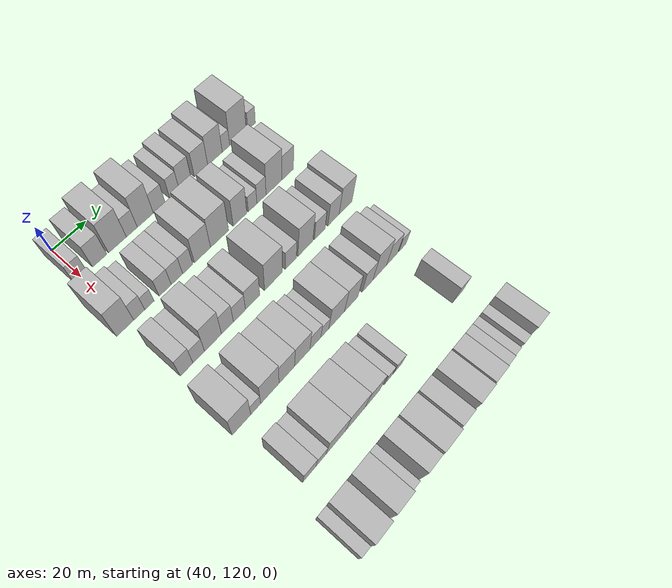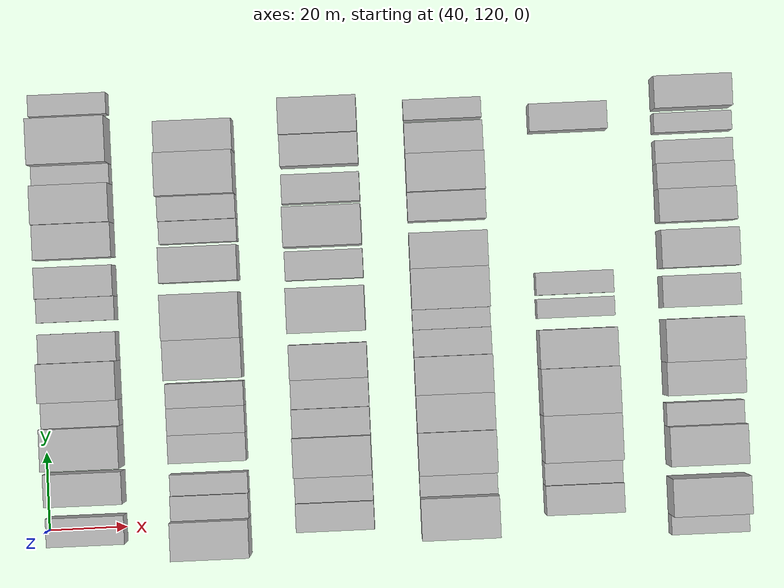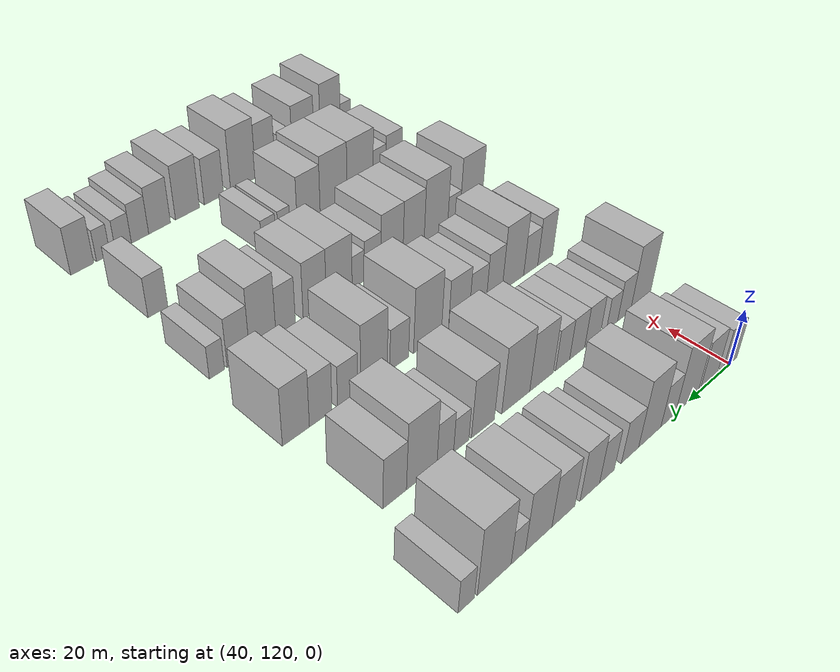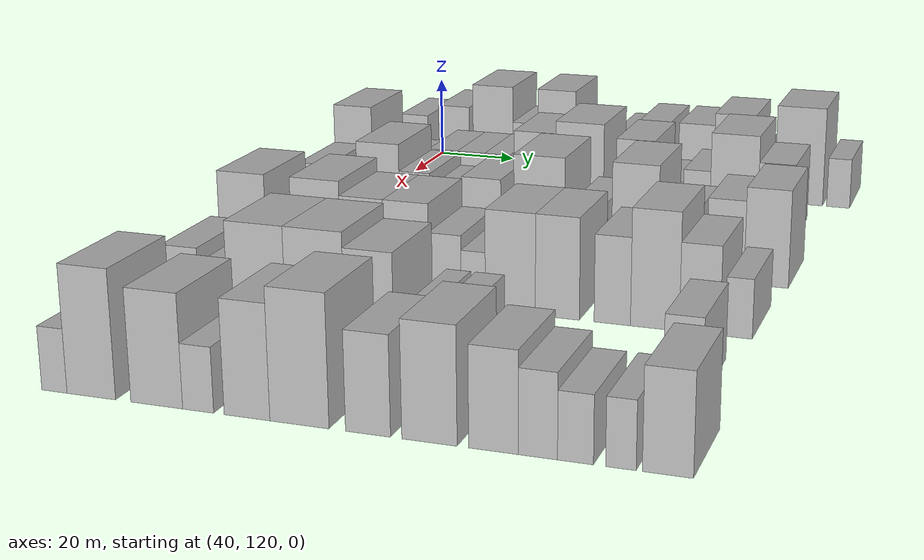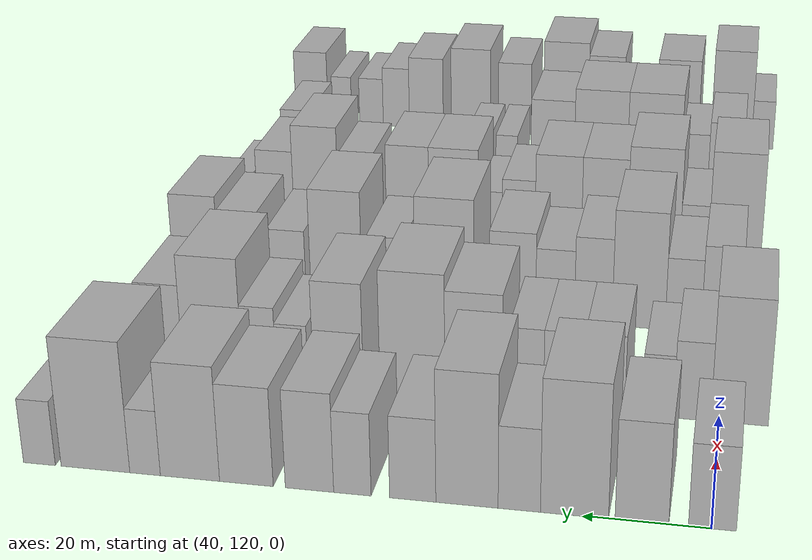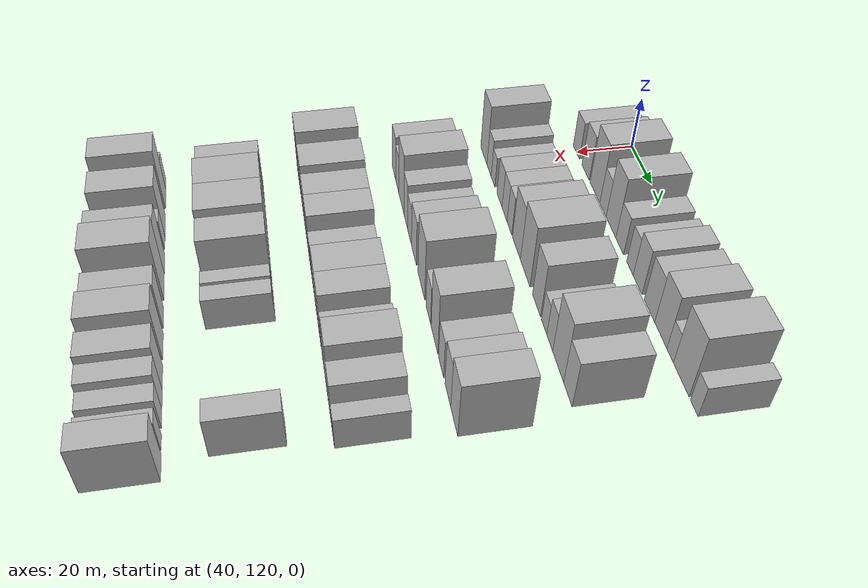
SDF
<sdf version="1.6">
 <world name="default">
  <model name="building_68">
   <static>1</static>
   <pose>50.0000 119.9070 0 0.000000 0.000000 0.000000</pose>
   <link name="link">
    <pose>0 0 7.50 0 0 0</pose>
    <collision name="collision"><geometry><box><size>20.0000 7.3428 15.0000</size></box></geometry></collision>
    <visual name="visual">
     <cast_shadows>0</cast_shadows>
     <geometry><box><size>20.0000 7.3428 15.0000</size></box></geometry>
     <material>
      <script>
       <uri>model://HANNAS_wall/materials/scripts</uri>
       <uri>model://HANNAS_wall/materials/textures</uri>
       <name>vrc/HANNAS_wall</name>
      </script>
     </material>
    </visual>
   </link>
  </model>
  <model name="building_69">
   <static>1</static>
   <pose>50.0000 130.7418 0 0.000000 0.000000 0.000000</pose>
   <link name="link">
    <pose>0 0 9.00 0 0 0</pose>
    <collision name="collision"><geometry><box><size>20.0000 8.3268 18.0000</size></box></geometry></collision>
    <visual name="visual">
     <cast_shadows>0</cast_shadows>
     <geometry><box><size>20.0000 8.3268 18.0000</size></box></geometry>
     <material>
      <script>
       <uri>model://HANNAS_wall/materials/scripts</uri>
       <uri>model://HANNAS_wall/materials/textures</uri>
       <name>vrc/HANNAS_wall</name>
      </script>
     </material>
    </visual>
   </link>
  </model>
  <model name="building_70">
   <static>1</static>
   <pose>50.0000 141.2380 0 0.000000 0.000000 0.000000</pose>
   <link name="link">
    <pose>0 0 12.00 0 0 0</pose>
    <collision name="collision"><geometry><box><size>20.0000 10.6655 24.0000</size></box></geometry></collision>
    <visual name="visual">
     <cast_shadows>0</cast_shadows>
     <geometry><box><size>20.0000 10.6655 24.0000</size></box></geometry>
     <material>
      <script>
       <uri>model://HANNAS_wall/materials/scripts</uri>
       <uri>model://HANNAS_wall/materials/textures</uri>
       <name>vrc/HANNAS_wall</name>
      </script>
     </material>
    </visual>
   </link>
  </model>
  <model name="building_71">
   <static>1</static>
   <pose>50.0000 149.9145 0 0.000000 0.000000 0.000000</pose>
   <link name="link">
    <pose>0 0 7.50 0 0 0</pose>
    <collision name="collision"><geometry><box><size>20.0000 6.6874 15.0000</size></box></geometry></collision>
    <visual name="visual">
     <cast_shadows>0</cast_shadows>
     <geometry><box><size>20.0000 6.6874 15.0000</size></box></geometry>
     <material>
      <script>
       <uri>model://HANNAS_wall/materials/scripts</uri>
       <uri>model://HANNAS_wall/materials/textures</uri>
       <name>vrc/HANNAS_wall</name>
      </script>
     </material>
    </visual>
   </link>
  </model>
  <model name="building_72">
   <static>1</static>
   <pose>50.0000 158.2253 0 0.000000 0.000000 0.000000</pose>
   <link name="link">
    <pose>0 0 12.00 0 0 0</pose>
    <collision name="collision"><geometry><box><size>20.0000 9.9344 24.0000</size></box></geometry></collision>
    <visual name="visual">
     <cast_shadows>0</cast_shadows>
     <geometry><box><size>20.0000 9.9344 24.0000</size></box></geometry>
     <material>
      <script>
       <uri>model://HANNAS_wall/materials/scripts</uri>
       <uri>model://HANNAS_wall/materials/textures</uri>
       <name>vrc/HANNAS_wall</name>
      </script>
     </material>
    </visual>
   </link>
  </model>
  <model name="building_73">
   <static>1</static>
   <pose>50.0000 166.9220 0 0.000000 0.000000 0.000000</pose>
   <link name="link">
    <pose>0 0 7.50 0 0 0</pose>
    <collision name="collision"><geometry><box><size>20.0000 7.4589 15.0000</size></box></geometry></collision>
    <visual name="visual">
     <cast_shadows>0</cast_shadows>
     <geometry><box><size>20.0000 7.4589 15.0000</size></box></geometry>
     <material>
      <script>
       <uri>model://HANNAS_wall/materials/scripts</uri>
       <uri>model://HANNAS_wall/materials/textures</uri>
       <name>vrc/HANNAS_wall</name>
      </script>
     </material>
    </visual>
   </link>
  </model>
  <model name="building_74">
   <static>1</static>
   <pose>50.0000 176.7063 0 0.000000 0.000000 0.000000</pose>
   <link name="link">
    <pose>0 0 7.50 0 0 0</pose>
    <collision name="collision"><geometry><box><size>20.0000 6.1096 15.0000</size></box></geometry></collision>
    <visual name="visual">
     <cast_shadows>0</cast_shadows>
     <geometry><box><size>20.0000 6.1096 15.0000</size></box></geometry>
     <material>
      <script>
       <uri>model://HANNAS_wall/materials/scripts</uri>
       <uri>model://HANNAS_wall/materials/textures</uri>
       <name>vrc/HANNAS_wall</name>
      </script>
     </material>
    </visual>
   </link>
  </model>
  <model name="building_75">
   <static>1</static>
   <pose>50.0000 183.7355 0 0.000000 0.000000 0.000000</pose>
   <link name="link">
    <pose>0 0 9.00 0 0 0</pose>
    <collision name="collision"><geometry><box><size>20.0000 7.9489 18.0000</size></box></geometry></collision>
    <visual name="visual">
     <cast_shadows>0</cast_shadows>
     <geometry><box><size>20.0000 7.9489 18.0000</size></box></geometry>
     <material>
      <script>
       <uri>model://HANNAS_wall/materials/scripts</uri>
       <uri>model://HANNAS_wall/materials/textures</uri>
       <name>vrc/HANNAS_wall</name>
      </script>
     </material>
    </visual>
   </link>
  </model>
  <model name="building_76">
   <static>1</static>
   <pose>50.0000 194.1709 0 0.000000 0.000000 0.000000</pose>
   <link name="link">
    <pose>0 0 9.00 0 0 0</pose>
    <collision name="collision"><geometry><box><size>20.0000 8.9219 18.0000</size></box></geometry></collision>
    <visual name="visual">
     <cast_shadows>0</cast_shadows>
     <geometry><box><size>20.0000 8.9219 18.0000</size></box></geometry>
     <material>
      <script>
       <uri>model://HANNAS_wall/materials/scripts</uri>
       <uri>model://HANNAS_wall/materials/textures</uri>
       <name>vrc/HANNAS_wall</name>
      </script>
     </material>
    </visual>
   </link>
  </model>
  <model name="building_77">
   <static>1</static>
   <pose>50.0000 203.6097 0 0.000000 0.000000 0.000000</pose>
   <link name="link">
    <pose>0 0 10.50 0 0 0</pose>
    <collision name="collision"><geometry><box><size>20.0000 9.9557 21.0000</size></box></geometry></collision>
    <visual name="visual">
     <cast_shadows>0</cast_shadows>
     <geometry><box><size>20.0000 9.9557 21.0000</size></box></geometry>
     <material>
      <script>
       <uri>model://HANNAS_wall/materials/scripts</uri>
       <uri>model://HANNAS_wall/materials/textures</uri>
       <name>vrc/HANNAS_wall</name>
      </script>
     </material>
    </visual>
   </link>
  </model>
  <model name="building_78">
   <static>1</static>
   <pose>50.0000 211.1815 0 0.000000 0.000000 0.000000</pose>
   <link name="link">
    <pose>0 0 6.00 0 0 0</pose>
    <collision name="collision"><geometry><box><size>20.0000 5.1879 12.0000</size></box></geometry></collision>
    <visual name="visual">
     <cast_shadows>0</cast_shadows>
     <geometry><box><size>20.0000 5.1879 12.0000</size></box></geometry>
     <material>
      <script>
       <uri>model://HANNAS_wall/materials/scripts</uri>
       <uri>model://HANNAS_wall/materials/textures</uri>
       <name>vrc/HANNAS_wall</name>
      </script>
     </material>
    </visual>
   </link>
  </model>
  <model name="building_79">
   <static>1</static>
   <pose>50.0000 219.6512 0 0.000000 0.000000 0.000000</pose>
   <link name="link">
    <pose>0 0 12.00 0 0 0</pose>
    <collision name="collision"><geometry><box><size>20.0000 11.7516 24.0000</size></box></geometry></collision>
    <visual name="visual">
     <cast_shadows>0</cast_shadows>
     <geometry><box><size>20.0000 11.7516 24.0000</size></box></geometry>
     <material>
      <script>
       <uri>model://HANNAS_wall/materials/scripts</uri>
       <uri>model://HANNAS_wall/materials/textures</uri>
       <name>vrc/HANNAS_wall</name>
      </script>
     </material>
    </visual>
   </link>
  </model>
  <model name="building_80">
   <static>1</static>
   <pose>50.0000 229.2806 0 0.000000 0.000000 0.000000</pose>
   <link name="link">
    <pose>0 0 6.00 0 0 0</pose>
    <collision name="collision"><geometry><box><size>20.0000 5.5071 12.0000</size></box></geometry></collision>
    <visual name="visual">
     <cast_shadows>0</cast_shadows>
     <geometry><box><size>20.0000 5.5071 12.0000</size></box></geometry>
     <material>
      <script>
       <uri>model://HANNAS_wall/materials/scripts</uri>
       <uri>model://HANNAS_wall/materials/textures</uri>
       <name>vrc/HANNAS_wall</name>
      </script>
     </material>
    </visual>
   </link>
  </model>
  <model name="building_191">
   <static>1</static>
   <pose>82.0000 116.6392 0 0.000000 0.000000 0.000000</pose>
   <link name="link">
    <pose>0 0 12.00 0 0 0</pose>
    <collision name="collision"><geometry><box><size>20.0000 9.7276 24.0000</size></box></geometry></collision>
    <visual name="visual">
     <cast_shadows>0</cast_shadows>
     <geometry><box><size>20.0000 9.7276 24.0000</size></box></geometry>
     <material>
      <script>
       <uri>model://HANNAS_wall/materials/scripts</uri>
       <uri>model://HANNAS_wall/materials/textures</uri>
       <name>vrc/HANNAS_wall</name>
      </script>
     </material>
    </visual>
   </link>
  </model>
  <model name="building_192">
   <static>1</static>
   <pose>82.0000 124.6727 0 0.000000 0.000000 0.000000</pose>
   <link name="link">
    <pose>0 0 7.50 0 0 0</pose>
    <collision name="collision"><geometry><box><size>20.0000 6.3396 15.0000</size></box></geometry></collision>
    <visual name="visual">
     <cast_shadows>0</cast_shadows>
     <geometry><box><size>20.0000 6.3396 15.0000</size></box></geometry>
     <material>
      <script>
       <uri>model://HANNAS_wall/materials/scripts</uri>
       <uri>model://HANNAS_wall/materials/textures</uri>
       <name>vrc/HANNAS_wall</name>
      </script>
     </material>
    </visual>
   </link>
  </model>
  <model name="building_193">
   <static>1</static>
   <pose>82.0000 130.5390 0 0.000000 0.000000 0.000000</pose>
   <link name="link">
    <pose>0 0 6.00 0 0 0</pose>
    <collision name="collision"><geometry><box><size>20.0000 5.3929 12.0000</size></box></geometry></collision>
    <visual name="visual">
     <cast_shadows>0</cast_shadows>
     <geometry><box><size>20.0000 5.3929 12.0000</size></box></geometry>
     <material>
      <script>
       <uri>model://HANNAS_wall/materials/scripts</uri>
       <uri>model://HANNAS_wall/materials/textures</uri>
       <name>vrc/HANNAS_wall</name>
      </script>
     </material>
    </visual>
   </link>
  </model>
  <model name="building_194">
   <static>1</static>
   <pose>82.0000 139.8363 0 0.000000 0.000000 0.000000</pose>
   <link name="link">
    <pose>0 0 7.50 0 0 0</pose>
    <collision name="collision"><geometry><box><size>20.0000 7.2018 15.0000</size></box></geometry></collision>
    <visual name="visual">
     <cast_shadows>0</cast_shadows>
     <geometry><box><size>20.0000 7.2018 15.0000</size></box></geometry>
     <material>
      <script>
       <uri>model://HANNAS_wall/materials/scripts</uri>
       <uri>model://HANNAS_wall/materials/textures</uri>
       <name>vrc/HANNAS_wall</name>
      </script>
     </material>
    </visual>
   </link>
  </model>
  <model name="building_195">
   <static>1</static>
   <pose>82.0000 146.8855 0 0.000000 0.000000 0.000000</pose>
   <link name="link">
    <pose>0 0 7.50 0 0 0</pose>
    <collision name="collision"><geometry><box><size>20.0000 6.8965 15.0000</size></box></geometry></collision>
    <visual name="visual">
     <cast_shadows>0</cast_shadows>
     <geometry><box><size>20.0000 6.8965 15.0000</size></box></geometry>
     <material>
      <script>
       <uri>model://HANNAS_wall/materials/scripts</uri>
       <uri>model://HANNAS_wall/materials/textures</uri>
       <name>vrc/HANNAS_wall</name>
      </script>
     </material>
    </visual>
   </link>
  </model>
  <model name="building_196">
   <static>1</static>
   <pose>82.0000 153.4600 0 0.000000 0.000000 0.000000</pose>
   <link name="link">
    <pose>0 0 7.50 0 0 0</pose>
    <collision name="collision"><geometry><box><size>20.0000 6.2525 15.0000</size></box></geometry></collision>
    <visual name="visual">
     <cast_shadows>0</cast_shadows>
     <geometry><box><size>20.0000 6.2525 15.0000</size></box></geometry>
     <material>
      <script>
       <uri>model://HANNAS_wall/materials/scripts</uri>
       <uri>model://HANNAS_wall/materials/textures</uri>
       <name>vrc/HANNAS_wall</name>
      </script>
     </material>
    </visual>
   </link>
  </model>
  <model name="building_197">
   <static>1</static>
   <pose>82.0000 162.6628 0 0.000000 0.000000 0.000000</pose>
   <link name="link">
    <pose>0 0 10.50 0 0 0</pose>
    <collision name="collision"><geometry><box><size>20.0000 10.1530 21.0000</size></box></geometry></collision>
    <visual name="visual">
     <cast_shadows>0</cast_shadows>
     <geometry><box><size>20.0000 10.1530 21.0000</size></box></geometry>
     <material>
      <script>
       <uri>model://HANNAS_wall/materials/scripts</uri>
       <uri>model://HANNAS_wall/materials/textures</uri>
       <name>vrc/HANNAS_wall</name>
      </script>
     </material>
    </visual>
   </link>
  </model>
  <model name="building_198">
   <static>1</static>
   <pose>82.0000 173.5480 0 0.000000 0.000000 0.000000</pose>
   <link name="link">
    <pose>0 0 12.00 0 0 0</pose>
    <collision name="collision"><geometry><box><size>20.0000 11.6176 24.0000</size></box></geometry></collision>
    <visual name="visual">
     <cast_shadows>0</cast_shadows>
     <geometry><box><size>20.0000 11.6176 24.0000</size></box></geometry>
     <material>
      <script>
       <uri>model://HANNAS_wall/materials/scripts</uri>
       <uri>model://HANNAS_wall/materials/textures</uri>
       <name>vrc/HANNAS_wall</name>
      </script>
     </material>
    </visual>
   </link>
  </model>
  <model name="building_199">
   <static>1</static>
   <pose>82.0000 186.8791 0 0.000000 0.000000 0.000000</pose>
   <link name="link">
    <pose>0 0 10.50 0 0 0</pose>
    <collision name="collision"><geometry><box><size>20.0000 9.0445 21.0000</size></box></geometry></collision>
    <visual name="visual">
     <cast_shadows>0</cast_shadows>
     <geometry><box><size>20.0000 9.0445 21.0000</size></box></geometry>
     <material>
      <script>
       <uri>model://HANNAS_wall/materials/scripts</uri>
       <uri>model://HANNAS_wall/materials/textures</uri>
       <name>vrc/HANNAS_wall</name>
      </script>
     </material>
    </visual>
   </link>
  </model>
  <model name="building_200">
   <static>1</static>
   <pose>82.0000 195.3046 0 0.000000 0.000000 0.000000</pose>
   <link name="link">
    <pose>0 0 6.00 0 0 0</pose>
    <collision name="collision"><geometry><box><size>20.0000 5.8066 12.0000</size></box></geometry></collision>
    <visual name="visual">
     <cast_shadows>0</cast_shadows>
     <geometry><box><size>20.0000 5.8066 12.0000</size></box></geometry>
     <material>
      <script>
       <uri>model://HANNAS_wall/materials/scripts</uri>
       <uri>model://HANNAS_wall/materials/textures</uri>
       <name>vrc/HANNAS_wall</name>
      </script>
     </material>
    </visual>
   </link>
  </model>
  <model name="building_201">
   <static>1</static>
   <pose>82.0000 201.3339 0 0.000000 0.000000 0.000000</pose>
   <link name="link">
    <pose>0 0 7.50 0 0 0</pose>
    <collision name="collision"><geometry><box><size>20.0000 6.2519 15.0000</size></box></geometry></collision>
    <visual name="visual">
     <cast_shadows>0</cast_shadows>
     <geometry><box><size>20.0000 6.2519 15.0000</size></box></geometry>
     <material>
      <script>
       <uri>model://HANNAS_wall/materials/scripts</uri>
       <uri>model://HANNAS_wall/materials/textures</uri>
       <name>vrc/HANNAS_wall</name>
      </script>
     </material>
    </visual>
   </link>
  </model>
  <model name="building_202">
   <static>1</static>
   <pose>82.0000 209.9600 0 0.000000 0.000000 0.000000</pose>
   <link name="link">
    <pose>0 0 12.00 0 0 0</pose>
    <collision name="collision"><geometry><box><size>20.0000 11.0002 24.0000</size></box></geometry></collision>
    <visual name="visual">
     <cast_shadows>0</cast_shadows>
     <geometry><box><size>20.0000 11.0002 24.0000</size></box></geometry>
     <material>
      <script>
       <uri>model://HANNAS_wall/materials/scripts</uri>
       <uri>model://HANNAS_wall/materials/textures</uri>
       <name>vrc/HANNAS_wall</name>
      </script>
     </material>
    </visual>
   </link>
  </model>
  <model name="building_203">
   <static>1</static>
   <pose>82.0000 219.5792 0 0.000000 0.000000 0.000000</pose>
   <link name="link">
    <pose>0 0 9.00 0 0 0</pose>
    <collision name="collision"><geometry><box><size>20.0000 8.2384 18.0000</size></box></geometry></collision>
    <visual name="visual">
     <cast_shadows>0</cast_shadows>
     <geometry><box><size>20.0000 8.2384 18.0000</size></box></geometry>
     <material>
      <script>
       <uri>model://HANNAS_wall/materials/scripts</uri>
       <uri>model://HANNAS_wall/materials/textures</uri>
       <name>vrc/HANNAS_wall</name>
      </script>
     </material>
    </visual>
   </link>
  </model>
  <model name="building_316">
   <static>1</static>
   <pose>114.0000 121.0120 0 0.000000 0.000000 0.000000</pose>
   <link name="link">
    <pose>0 0 9.00 0 0 0</pose>
    <collision name="collision"><geometry><box><size>20.0000 7.2758 18.0000</size></box></geometry></collision>
    <visual name="visual">
     <cast_shadows>0</cast_shadows>
     <geometry><box><size>20.0000 7.2758 18.0000</size></box></geometry>
     <material>
      <script>
       <uri>model://HANNAS_wall/materials/scripts</uri>
       <uri>model://HANNAS_wall/materials/textures</uri>
       <name>vrc/HANNAS_wall</name>
      </script>
     </material>
    </visual>
   </link>
  </model>
  <model name="building_317">
   <static>1</static>
   <pose>114.0000 128.0363 0 0.000000 0.000000 0.000000</pose>
   <link name="link">
    <pose>0 0 7.50 0 0 0</pose>
    <collision name="collision"><geometry><box><size>20.0000 6.7727 15.0000</size></box></geometry></collision>
    <visual name="visual">
     <cast_shadows>0</cast_shadows>
     <geometry><box><size>20.0000 6.7727 15.0000</size></box></geometry>
     <material>
      <script>
       <uri>model://HANNAS_wall/materials/scripts</uri>
       <uri>model://HANNAS_wall/materials/textures</uri>
       <name>vrc/HANNAS_wall</name>
      </script>
     </material>
    </visual>
   </link>
  </model>
  <model name="building_318">
   <static>1</static>
   <pose>114.0000 136.4475 0 0.000000 0.000000 0.000000</pose>
   <link name="link">
    <pose>0 0 12.00 0 0 0</pose>
    <collision name="collision"><geometry><box><size>20.0000 10.0498 24.0000</size></box></geometry></collision>
    <visual name="visual">
     <cast_shadows>0</cast_shadows>
     <geometry><box><size>20.0000 10.0498 24.0000</size></box></geometry>
     <material>
      <script>
       <uri>model://HANNAS_wall/materials/scripts</uri>
       <uri>model://HANNAS_wall/materials/textures</uri>
       <name>vrc/HANNAS_wall</name>
      </script>
     </material>
    </visual>
   </link>
  </model>
  <model name="building_319">
   <static>1</static>
   <pose>114.0000 145.0746 0 0.000000 0.000000 0.000000</pose>
   <link name="link">
    <pose>0 0 9.00 0 0 0</pose>
    <collision name="collision"><geometry><box><size>20.0000 7.2045 18.0000</size></box></geometry></collision>
    <visual name="visual">
     <cast_shadows>0</cast_shadows>
     <geometry><box><size>20.0000 7.2045 18.0000</size></box></geometry>
     <material>
      <script>
       <uri>model://HANNAS_wall/materials/scripts</uri>
       <uri>model://HANNAS_wall/materials/textures</uri>
       <name>vrc/HANNAS_wall</name>
      </script>
     </material>
    </visual>
   </link>
  </model>
  <model name="building_320">
   <static>1</static>
   <pose>114.0000 152.3968 0 0.000000 0.000000 0.000000</pose>
   <link name="link">
    <pose>0 0 7.50 0 0 0</pose>
    <collision name="collision"><geometry><box><size>20.0000 7.4398 15.0000</size></box></geometry></collision>
    <visual name="visual">
     <cast_shadows>0</cast_shadows>
     <geometry><box><size>20.0000 7.4398 15.0000</size></box></geometry>
     <material>
      <script>
       <uri>model://HANNAS_wall/materials/scripts</uri>
       <uri>model://HANNAS_wall/materials/textures</uri>
       <name>vrc/HANNAS_wall</name>
      </script>
     </material>
    </visual>
   </link>
  </model>
  <model name="building_321">
   <static>1</static>
   <pose>114.0000 160.6067 0 0.000000 0.000000 0.000000</pose>
   <link name="link">
    <pose>0 0 9.00 0 0 0</pose>
    <collision name="collision"><geometry><box><size>20.0000 8.9800 18.0000</size></box></geometry></collision>
    <visual name="visual">
     <cast_shadows>0</cast_shadows>
     <geometry><box><size>20.0000 8.9800 18.0000</size></box></geometry>
     <material>
      <script>
       <uri>model://HANNAS_wall/materials/scripts</uri>
       <uri>model://HANNAS_wall/materials/textures</uri>
       <name>vrc/HANNAS_wall</name>
      </script>
     </material>
    </visual>
   </link>
  </model>
  <model name="building_322">
   <static>1</static>
   <pose>114.0000 173.8413 0 0.000000 0.000000 0.000000</pose>
   <link name="link">
    <pose>0 0 12.00 0 0 0</pose>
    <collision name="collision"><geometry><box><size>20.0000 11.4893 24.0000</size></box></geometry></collision>
    <visual name="visual">
     <cast_shadows>0</cast_shadows>
     <geometry><box><size>20.0000 11.4893 24.0000</size></box></geometry>
     <material>
      <script>
       <uri>model://HANNAS_wall/materials/scripts</uri>
       <uri>model://HANNAS_wall/materials/textures</uri>
       <name>vrc/HANNAS_wall</name>
      </script>
     </material>
    </visual>
   </link>
  </model>
  <model name="building_323">
   <static>1</static>
   <pose>114.0000 185.3060 0 0.000000 0.000000 0.000000</pose>
   <link name="link">
    <pose>0 0 7.50 0 0 0</pose>
    <collision name="collision"><geometry><box><size>20.0000 7.4400 15.0000</size></box></geometry></collision>
    <visual name="visual">
     <cast_shadows>0</cast_shadows>
     <geometry><box><size>20.0000 7.4400 15.0000</size></box></geometry>
     <material>
      <script>
       <uri>model://HANNAS_wall/materials/scripts</uri>
       <uri>model://HANNAS_wall/materials/textures</uri>
       <name>vrc/HANNAS_wall</name>
      </script>
     </material>
    </visual>
   </link>
  </model>
  <model name="building_324">
   <static>1</static>
   <pose>114.0000 195.1386 0 0.000000 0.000000 0.000000</pose>
   <link name="link">
    <pose>0 0 12.00 0 0 0</pose>
    <collision name="collision"><geometry><box><size>20.0000 10.2252 24.0000</size></box></geometry></collision>
    <visual name="visual">
     <cast_shadows>0</cast_shadows>
     <geometry><box><size>20.0000 10.2252 24.0000</size></box></geometry>
     <material>
      <script>
       <uri>model://HANNAS_wall/materials/scripts</uri>
       <uri>model://HANNAS_wall/materials/textures</uri>
       <name>vrc/HANNAS_wall</name>
      </script>
     </material>
    </visual>
   </link>
  </model>
  <model name="building_325">
   <static>1</static>
   <pose>114.0000 204.9755 0 0.000000 0.000000 0.000000</pose>
   <link name="link">
    <pose>0 0 7.50 0 0 0</pose>
    <collision name="collision"><geometry><box><size>20.0000 7.4486 15.0000</size></box></geometry></collision>
    <visual name="visual">
     <cast_shadows>0</cast_shadows>
     <geometry><box><size>20.0000 7.4486 15.0000</size></box></geometry>
     <material>
      <script>
       <uri>model://HANNAS_wall/materials/scripts</uri>
       <uri>model://HANNAS_wall/materials/textures</uri>
       <name>vrc/HANNAS_wall</name>
      </script>
     </material>
    </visual>
   </link>
  </model>
  <model name="building_326">
   <static>1</static>
   <pose>114.0000 214.7155 0 0.000000 0.000000 0.000000</pose>
   <link name="link">
    <pose>0 0 9.00 0 0 0</pose>
    <collision name="collision"><geometry><box><size>20.0000 8.0315 18.0000</size></box></geometry></collision>
    <visual name="visual">
     <cast_shadows>0</cast_shadows>
     <geometry><box><size>20.0000 8.0315 18.0000</size></box></geometry>
     <material>
      <script>
       <uri>model://HANNAS_wall/materials/scripts</uri>
       <uri>model://HANNAS_wall/materials/textures</uri>
       <name>vrc/HANNAS_wall</name>
      </script>
     </material>
    </visual>
   </link>
  </model>
  <model name="building_327">
   <static>1</static>
   <pose>114.0000 223.3928 0 0.000000 0.000000 0.000000</pose>
   <link name="link">
    <pose>0 0 10.50 0 0 0</pose>
    <collision name="collision"><geometry><box><size>20.0000 9.3229 21.0000</size></box></geometry></collision>
    <visual name="visual">
     <cast_shadows>0</cast_shadows>
     <geometry><box><size>20.0000 9.3229 21.0000</size></box></geometry>
     <material>
      <script>
       <uri>model://HANNAS_wall/materials/scripts</uri>
       <uri>model://HANNAS_wall/materials/textures</uri>
       <name>vrc/HANNAS_wall</name>
      </script>
     </material>
    </visual>
   </link>
  </model>
  <model name="building_435">
   <static>1</static>
   <pose>146.0000 119.4018 0 0.000000 0.000000 0.000000</pose>
   <link name="link">
    <pose>0 0 12.00 0 0 0</pose>
    <collision name="collision"><geometry><box><size>20.0000 10.6855 24.0000</size></box></geometry></collision>
    <visual name="visual">
     <cast_shadows>0</cast_shadows>
     <geometry><box><size>20.0000 10.6855 24.0000</size></box></geometry>
     <material>
      <script>
       <uri>model://HANNAS_wall/materials/scripts</uri>
       <uri>model://HANNAS_wall/materials/textures</uri>
       <name>vrc/HANNAS_wall</name>
      </script>
     </material>
    </visual>
   </link>
  </model>
  <model name="building_436">
   <static>1</static>
   <pose>146.0000 127.6341 0 0.000000 0.000000 0.000000</pose>
   <link name="link">
    <pose>0 0 6.00 0 0 0</pose>
    <collision name="collision"><geometry><box><size>20.0000 5.7791 12.0000</size></box></geometry></collision>
    <visual name="visual">
     <cast_shadows>0</cast_shadows>
     <geometry><box><size>20.0000 5.7791 12.0000</size></box></geometry>
     <material>
      <script>
       <uri>model://HANNAS_wall/materials/scripts</uri>
       <uri>model://HANNAS_wall/materials/textures</uri>
       <name>vrc/HANNAS_wall</name>
      </script>
     </material>
    </visual>
   </link>
  </model>
  <model name="building_437">
   <static>1</static>
   <pose>146.0000 135.9705 0 0.000000 0.000000 0.000000</pose>
   <link name="link">
    <pose>0 0 12.00 0 0 0</pose>
    <collision name="collision"><geometry><box><size>20.0000 10.8936 24.0000</size></box></geometry></collision>
    <visual name="visual">
     <cast_shadows>0</cast_shadows>
     <geometry><box><size>20.0000 10.8936 24.0000</size></box></geometry>
     <material>
      <script>
       <uri>model://HANNAS_wall/materials/scripts</uri>
       <uri>model://HANNAS_wall/materials/textures</uri>
       <name>vrc/HANNAS_wall</name>
      </script>
     </material>
    </visual>
   </link>
  </model>
  <model name="building_438">
   <static>1</static>
   <pose>146.0000 146.1739 0 0.000000 0.000000 0.000000</pose>
   <link name="link">
    <pose>0 0 10.50 0 0 0</pose>
    <collision name="collision"><geometry><box><size>20.0000 9.5132 21.0000</size></box></geometry></collision>
    <visual name="visual">
     <cast_shadows>0</cast_shadows>
     <geometry><box><size>20.0000 9.5132 21.0000</size></box></geometry>
     <material>
      <script>
       <uri>model://HANNAS_wall/materials/scripts</uri>
       <uri>model://HANNAS_wall/materials/textures</uri>
       <name>vrc/HANNAS_wall</name>
      </script>
     </material>
    </visual>
   </link>
  </model>
  <model name="building_439">
   <static>1</static>
   <pose>146.0000 155.7803 0 0.000000 0.000000 0.000000</pose>
   <link name="link">
    <pose>0 0 10.50 0 0 0</pose>
    <collision name="collision"><geometry><box><size>20.0000 9.6996 21.0000</size></box></geometry></collision>
    <visual name="visual">
     <cast_shadows>0</cast_shadows>
     <geometry><box><size>20.0000 9.6996 21.0000</size></box></geometry>
     <material>
      <script>
       <uri>model://HANNAS_wall/materials/scripts</uri>
       <uri>model://HANNAS_wall/materials/textures</uri>
       <name>vrc/HANNAS_wall</name>
      </script>
     </material>
    </visual>
   </link>
  </model>
  <model name="building_440">
   <static>1</static>
   <pose>146.0000 164.0898 0 0.000000 0.000000 0.000000</pose>
   <link name="link">
    <pose>0 0 7.50 0 0 0</pose>
    <collision name="collision"><geometry><box><size>20.0000 6.9195 15.0000</size></box></geometry></collision>
    <visual name="visual">
     <cast_shadows>0</cast_shadows>
     <geometry><box><size>20.0000 6.9195 15.0000</size></box></geometry>
     <material>
      <script>
       <uri>model://HANNAS_wall/materials/scripts</uri>
       <uri>model://HANNAS_wall/materials/textures</uri>
       <name>vrc/HANNAS_wall</name>
      </script>
     </material>
    </visual>
   </link>
  </model>
  <model name="building_441">
   <static>1</static>
   <pose>146.0000 170.1136 0 0.000000 0.000000 0.000000</pose>
   <link name="link">
    <pose>0 0 6.00 0 0 0</pose>
    <collision name="collision"><geometry><box><size>20.0000 5.1281 12.0000</size></box></geometry></collision>
    <visual name="visual">
     <cast_shadows>0</cast_shadows>
     <geometry><box><size>20.0000 5.1281 12.0000</size></box></geometry>
     <material>
      <script>
       <uri>model://HANNAS_wall/materials/scripts</uri>
       <uri>model://HANNAS_wall/materials/textures</uri>
       <name>vrc/HANNAS_wall</name>
      </script>
     </material>
    </visual>
   </link>
  </model>
  <model name="building_442">
   <static>1</static>
   <pose>146.0000 177.9181 0 0.000000 0.000000 0.000000</pose>
   <link name="link">
    <pose>0 0 10.50 0 0 0</pose>
    <collision name="collision"><geometry><box><size>20.0000 10.4809 21.0000</size></box></geometry></collision>
    <visual name="visual">
     <cast_shadows>0</cast_shadows>
     <geometry><box><size>20.0000 10.4809 21.0000</size></box></geometry>
     <material>
      <script>
       <uri>model://HANNAS_wall/materials/scripts</uri>
       <uri>model://HANNAS_wall/materials/textures</uri>
       <name>vrc/HANNAS_wall</name>
      </script>
     </material>
    </visual>
   </link>
  </model>
  <model name="building_443">
   <static>1</static>
   <pose>146.0000 187.7058 0 0.000000 0.000000 0.000000</pose>
   <link name="link">
    <pose>0 0 10.50 0 0 0</pose>
    <collision name="collision"><geometry><box><size>20.0000 9.0945 21.0000</size></box></geometry></collision>
    <visual name="visual">
     <cast_shadows>0</cast_shadows>
     <geometry><box><size>20.0000 9.0945 21.0000</size></box></geometry>
     <material>
      <script>
       <uri>model://HANNAS_wall/materials/scripts</uri>
       <uri>model://HANNAS_wall/materials/textures</uri>
       <name>vrc/HANNAS_wall</name>
      </script>
     </material>
    </visual>
   </link>
  </model>
  <model name="building_444">
   <static>1</static>
   <pose>146.0000 198.9295 0 0.000000 0.000000 0.000000</pose>
   <link name="link">
    <pose>0 0 9.00 0 0 0</pose>
    <collision name="collision"><geometry><box><size>20.0000 7.3530 18.0000</size></box></geometry></collision>
    <visual name="visual">
     <cast_shadows>0</cast_shadows>
     <geometry><box><size>20.0000 7.3530 18.0000</size></box></geometry>
     <material>
      <script>
       <uri>model://HANNAS_wall/materials/scripts</uri>
       <uri>model://HANNAS_wall/materials/textures</uri>
       <name>vrc/HANNAS_wall</name>
      </script>
     </material>
    </visual>
   </link>
  </model>
  <model name="building_445">
   <static>1</static>
   <pose>146.0000 207.4786 0 0.000000 0.000000 0.000000</pose>
   <link name="link">
    <pose>0 0 12.00 0 0 0</pose>
    <collision name="collision"><geometry><box><size>20.0000 9.7452 24.0000</size></box></geometry></collision>
    <visual name="visual">
     <cast_shadows>0</cast_shadows>
     <geometry><box><size>20.0000 9.7452 24.0000</size></box></geometry>
     <material>
      <script>
       <uri>model://HANNAS_wall/materials/scripts</uri>
       <uri>model://HANNAS_wall/materials/textures</uri>
       <name>vrc/HANNAS_wall</name>
      </script>
     </material>
    </visual>
   </link>
  </model>
  <model name="building_446">
   <static>1</static>
   <pose>146.0000 216.3402 0 0.000000 0.000000 0.000000</pose>
   <link name="link">
    <pose>0 0 9.00 0 0 0</pose>
    <collision name="collision"><geometry><box><size>20.0000 7.9781 18.0000</size></box></geometry></collision>
    <visual name="visual">
     <cast_shadows>0</cast_shadows>
     <geometry><box><size>20.0000 7.9781 18.0000</size></box></geometry>
     <material>
      <script>
       <uri>model://HANNAS_wall/materials/scripts</uri>
       <uri>model://HANNAS_wall/materials/textures</uri>
       <name>vrc/HANNAS_wall</name>
      </script>
     </material>
    </visual>
   </link>
  </model>
  <model name="building_447">
   <static>1</static>
   <pose>146.0000 223.9571 0 0.000000 0.000000 0.000000</pose>
   <link name="link">
    <pose>0 0 6.00 0 0 0</pose>
    <collision name="collision"><geometry><box><size>20.0000 5.2555 12.0000</size></box></geometry></collision>
    <visual name="visual">
     <cast_shadows>0</cast_shadows>
     <geometry><box><size>20.0000 5.2555 12.0000</size></box></geometry>
     <material>
      <script>
       <uri>model://HANNAS_wall/materials/scripts</uri>
       <uri>model://HANNAS_wall/materials/textures</uri>
       <name>vrc/HANNAS_wall</name>
      </script>
     </material>
    </visual>
   </link>
  </model>
  <model name="building_557">
   <static>1</static>
   <pose>178.0000 122.5718 0 0.000000 0.000000 0.000000</pose>
   <link name="link">
    <pose>0 0 9.00 0 0 0</pose>
    <collision name="collision"><geometry><box><size>20.0000 7.5385 18.0000</size></box></geometry></collision>
    <visual name="visual">
     <cast_shadows>0</cast_shadows>
     <geometry><box><size>20.0000 7.5385 18.0000</size></box></geometry>
     <material>
      <script>
       <uri>model://HANNAS_wall/materials/scripts</uri>
       <uri>model://HANNAS_wall/materials/textures</uri>
       <name>vrc/HANNAS_wall</name>
      </script>
     </material>
    </visual>
   </link>
  </model>
  <model name="building_558">
   <static>1</static>
   <pose>178.0000 129.3425 0 0.000000 0.000000 0.000000</pose>
   <link name="link">
    <pose>0 0 7.50 0 0 0</pose>
    <collision name="collision"><geometry><box><size>20.0000 6.0029 15.0000</size></box></geometry></collision>
    <visual name="visual">
     <cast_shadows>0</cast_shadows>
     <geometry><box><size>20.0000 6.0029 15.0000</size></box></geometry>
     <material>
      <script>
       <uri>model://HANNAS_wall/materials/scripts</uri>
       <uri>model://HANNAS_wall/materials/textures</uri>
       <name>vrc/HANNAS_wall</name>
      </script>
     </material>
    </visual>
   </link>
  </model>
  <model name="building_559">
   <static>1</static>
   <pose>178.0000 138.3304 0 0.000000 0.000000 0.000000</pose>
   <link name="link">
    <pose>0 0 12.00 0 0 0</pose>
    <collision name="collision"><geometry><box><size>20.0000 11.9729 24.0000</size></box></geometry></collision>
    <visual name="visual">
     <cast_shadows>0</cast_shadows>
     <geometry><box><size>20.0000 11.9729 24.0000</size></box></geometry>
     <material>
      <script>
       <uri>model://HANNAS_wall/materials/scripts</uri>
       <uri>model://HANNAS_wall/materials/textures</uri>
       <name>vrc/HANNAS_wall</name>
      </script>
     </material>
    </visual>
   </link>
  </model>
  <model name="building_560">
   <static>1</static>
   <pose>178.0000 150.2691 0 0.000000 0.000000 0.000000</pose>
   <link name="link">
    <pose>0 0 12.00 0 0 0</pose>
    <collision name="collision"><geometry><box><size>20.0000 11.9045 24.0000</size></box></geometry></collision>
    <visual name="visual">
     <cast_shadows>0</cast_shadows>
     <geometry><box><size>20.0000 11.9045 24.0000</size></box></geometry>
     <material>
      <script>
       <uri>model://HANNAS_wall/materials/scripts</uri>
       <uri>model://HANNAS_wall/materials/textures</uri>
       <name>vrc/HANNAS_wall</name>
      </script>
     </material>
    </visual>
   </link>
  </model>
  <model name="building_561">
   <static>1</static>
   <pose>178.0000 161.1364 0 0.000000 0.000000 0.000000</pose>
   <link name="link">
    <pose>0 0 10.50 0 0 0</pose>
    <collision name="collision"><geometry><box><size>20.0000 9.8300 21.0000</size></box></geometry></collision>
    <visual name="visual">
     <cast_shadows>0</cast_shadows>
     <geometry><box><size>20.0000 9.8300 21.0000</size></box></geometry>
     <material>
      <script>
       <uri>model://HANNAS_wall/materials/scripts</uri>
       <uri>model://HANNAS_wall/materials/textures</uri>
       <name>vrc/HANNAS_wall</name>
      </script>
     </material>
    </visual>
   </link>
  </model>
  <model name="building_562">
   <static>1</static>
   <pose>178.0000 171.5210 0 0.000000 0.000000 0.000000</pose>
   <link name="link">
    <pose>0 0 6.00 0 0 0</pose>
    <collision name="collision"><geometry><box><size>20.0000 4.9393 12.0000</size></box></geometry></collision>
    <visual name="visual">
     <cast_shadows>0</cast_shadows>
     <geometry><box><size>20.0000 4.9393 12.0000</size></box></geometry>
     <material>
      <script>
       <uri>model://HANNAS_wall/materials/scripts</uri>
       <uri>model://HANNAS_wall/materials/textures</uri>
       <name>vrc/HANNAS_wall</name>
      </script>
     </material>
    </visual>
   </link>
  </model>
  <model name="building_563">
   <static>1</static>
   <pose>178.0000 177.8843 0 0.000000 0.000000 0.000000</pose>
   <link name="link">
    <pose>0 0 6.00 0 0 0</pose>
    <collision name="collision"><geometry><box><size>20.0000 5.7871 12.0000</size></box></geometry></collision>
    <visual name="visual">
     <cast_shadows>0</cast_shadows>
     <geometry><box><size>20.0000 5.7871 12.0000</size></box></geometry>
     <material>
      <script>
       <uri>model://HANNAS_wall/materials/scripts</uri>
       <uri>model://HANNAS_wall/materials/textures</uri>
       <name>vrc/HANNAS_wall</name>
      </script>
     </material>
    </visual>
   </link>
  </model>
  <model name="building_564">
   <static>1</static>
   <pose>178.0000 220.3937 0 0.000000 0.000000 0.000000</pose>
   <link name="link">
    <pose>0 0 7.50 0 0 0</pose>
    <collision name="collision"><geometry><box><size>20.0000 7.0773 15.0000</size></box></geometry></collision>
    <visual name="visual">
     <cast_shadows>0</cast_shadows>
     <geometry><box><size>20.0000 7.0773 15.0000</size></box></geometry>
     <material>
      <script>
       <uri>model://HANNAS_wall/materials/scripts</uri>
       <uri>model://HANNAS_wall/materials/textures</uri>
       <name>vrc/HANNAS_wall</name>
      </script>
     </material>
    </visual>
   </link>
  </model>
  <model name="building_675">
   <static>1</static>
   <pose>210.0000 114.6746 0 0.000000 0.000000 0.000000</pose>
   <link name="link">
    <pose>0 0 6.00 0 0 0</pose>
    <collision name="collision"><geometry><box><size>20.0000 5.0961 12.0000</size></box></geometry></collision>
    <visual name="visual">
     <cast_shadows>0</cast_shadows>
     <geometry><box><size>20.0000 5.0961 12.0000</size></box></geometry>
     <material>
      <script>
       <uri>model://HANNAS_wall/materials/scripts</uri>
       <uri>model://HANNAS_wall/materials/textures</uri>
       <name>vrc/HANNAS_wall</name>
      </script>
     </material>
    </visual>
   </link>
  </model>
  <model name="building_676">
   <static>1</static>
   <pose>210.0000 122.0651 0 0.000000 0.000000 0.000000</pose>
   <link name="link">
    <pose>0 0 12.00 0 0 0</pose>
    <collision name="collision"><geometry><box><size>20.0000 9.6847 24.0000</size></box></geometry></collision>
    <visual name="visual">
     <cast_shadows>0</cast_shadows>
     <geometry><box><size>20.0000 9.6847 24.0000</size></box></geometry>
     <material>
      <script>
       <uri>model://HANNAS_wall/materials/scripts</uri>
       <uri>model://HANNAS_wall/materials/textures</uri>
       <name>vrc/HANNAS_wall</name>
      </script>
     </material>
    </visual>
   </link>
  </model>
  <model name="building_677">
   <static>1</static>
   <pose>210.0000 134.9484 0 0.000000 0.000000 0.000000</pose>
   <link name="link">
    <pose>0 0 10.50 0 0 0</pose>
    <collision name="collision"><geometry><box><size>20.0000 10.0819 21.0000</size></box></geometry></collision>
    <visual name="visual">
     <cast_shadows>0</cast_shadows>
     <geometry><box><size>20.0000 10.0819 21.0000</size></box></geometry>
     <material>
      <script>
       <uri>model://HANNAS_wall/materials/scripts</uri>
       <uri>model://HANNAS_wall/materials/textures</uri>
       <name>vrc/HANNAS_wall</name>
      </script>
     </material>
    </visual>
   </link>
  </model>
  <model name="building_678">
   <static>1</static>
   <pose>210.0000 142.9562 0 0.000000 0.000000 0.000000</pose>
   <link name="link">
    <pose>0 0 6.00 0 0 0</pose>
    <collision name="collision"><geometry><box><size>20.0000 5.9339 12.0000</size></box></geometry></collision>
    <visual name="visual">
     <cast_shadows>0</cast_shadows>
     <geometry><box><size>20.0000 5.9339 12.0000</size></box></geometry>
     <material>
      <script>
       <uri>model://HANNAS_wall/materials/scripts</uri>
       <uri>model://HANNAS_wall/materials/textures</uri>
       <name>vrc/HANNAS_wall</name>
      </script>
     </material>
    </visual>
   </link>
  </model>
  <model name="building_679">
   <static>1</static>
   <pose>210.0000 152.2138 0 0.000000 0.000000 0.000000</pose>
   <link name="link">
    <pose>0 0 10.50 0 0 0</pose>
    <collision name="collision"><geometry><box><size>20.0000 8.5814 21.0000</size></box></geometry></collision>
    <visual name="visual">
     <cast_shadows>0</cast_shadows>
     <geometry><box><size>20.0000 8.5814 21.0000</size></box></geometry>
     <material>
      <script>
       <uri>model://HANNAS_wall/materials/scripts</uri>
       <uri>model://HANNAS_wall/materials/textures</uri>
       <name>vrc/HANNAS_wall</name>
      </script>
     </material>
    </visual>
   </link>
  </model>
  <model name="building_680">
   <static>1</static>
   <pose>210.0000 161.9439 0 0.000000 0.000000 0.000000</pose>
   <link name="link">
    <pose>0 0 12.00 0 0 0</pose>
    <collision name="collision"><geometry><box><size>20.0000 10.8787 24.0000</size></box></geometry></collision>
    <visual name="visual">
     <cast_shadows>0</cast_shadows>
     <geometry><box><size>20.0000 10.8787 24.0000</size></box></geometry>
     <material>
      <script>
       <uri>model://HANNAS_wall/materials/scripts</uri>
       <uri>model://HANNAS_wall/materials/textures</uri>
       <name>vrc/HANNAS_wall</name>
      </script>
     </material>
    </visual>
   </link>
  </model>
  <model name="building_681">
   <static>1</static>
   <pose>210.0000 174.4171 0 0.000000 0.000000 0.000000</pose>
   <link name="link">
    <pose>0 0 9.00 0 0 0</pose>
    <collision name="collision"><geometry><box><size>20.0000 8.0678 18.0000</size></box></geometry></collision>
    <visual name="visual">
     <cast_shadows>0</cast_shadows>
     <geometry><box><size>20.0000 8.0678 18.0000</size></box></geometry>
     <material>
      <script>
       <uri>model://HANNAS_wall/materials/scripts</uri>
       <uri>model://HANNAS_wall/materials/textures</uri>
       <name>vrc/HANNAS_wall</name>
      </script>
     </material>
    </visual>
   </link>
  </model>
  <model name="building_682">
   <static>1</static>
   <pose>210.0000 185.3017 0 0.000000 0.000000 0.000000</pose>
   <link name="link">
    <pose>0 0 10.50 0 0 0</pose>
    <collision name="collision"><geometry><box><size>20.0000 9.7014 21.0000</size></box></geometry></collision>
    <visual name="visual">
     <cast_shadows>0</cast_shadows>
     <geometry><box><size>20.0000 9.7014 21.0000</size></box></geometry>
     <material>
      <script>
       <uri>model://HANNAS_wall/materials/scripts</uri>
       <uri>model://HANNAS_wall/materials/textures</uri>
       <name>vrc/HANNAS_wall</name>
      </script>
     </material>
    </visual>
   </link>
  </model>
  <model name="building_683">
   <static>1</static>
   <pose>210.0000 196.4025 0 0.000000 0.000000 0.000000</pose>
   <link name="link">
    <pose>0 0 9.00 0 0 0</pose>
    <collision name="collision"><geometry><box><size>20.0000 8.5001 18.0000</size></box></geometry></collision>
    <visual name="visual">
     <cast_shadows>0</cast_shadows>
     <geometry><box><size>20.0000 8.5001 18.0000</size></box></geometry>
     <material>
      <script>
       <uri>model://HANNAS_wall/materials/scripts</uri>
       <uri>model://HANNAS_wall/materials/textures</uri>
       <name>vrc/HANNAS_wall</name>
      </script>
     </material>
    </visual>
   </link>
  </model>
  <model name="building_684">
   <static>1</static>
   <pose>210.0000 203.9496 0 0.000000 0.000000 0.000000</pose>
   <link name="link">
    <pose>0 0 7.50 0 0 0</pose>
    <collision name="collision"><geometry><box><size>20.0000 6.5942 15.0000</size></box></geometry></collision>
    <visual name="visual">
     <cast_shadows>0</cast_shadows>
     <geometry><box><size>20.0000 6.5942 15.0000</size></box></geometry>
     <material>
      <script>
       <uri>model://HANNAS_wall/materials/scripts</uri>
       <uri>model://HANNAS_wall/materials/textures</uri>
       <name>vrc/HANNAS_wall</name>
      </script>
     </material>
    </visual>
   </link>
  </model>
  <model name="building_685">
   <static>1</static>
   <pose>210.0000 210.2364 0 0.000000 0.000000 0.000000</pose>
   <link name="link">
    <pose>0 0 6.00 0 0 0</pose>
    <collision name="collision"><geometry><box><size>20.0000 5.9794 12.0000</size></box></geometry></collision>
    <visual name="visual">
     <cast_shadows>0</cast_shadows>
     <geometry><box><size>20.0000 5.9794 12.0000</size></box></geometry>
     <material>
      <script>
       <uri>model://HANNAS_wall/materials/scripts</uri>
       <uri>model://HANNAS_wall/materials/textures</uri>
       <name>vrc/HANNAS_wall</name>
      </script>
     </material>
    </visual>
   </link>
  </model>
  <model name="building_686">
   <static>1</static>
   <pose>210.0000 217.7228 0 0.000000 0.000000 0.000000</pose>
   <link name="link">
    <pose>0 0 6.00 0 0 0</pose>
    <collision name="collision"><geometry><box><size>20.0000 4.9934 12.0000</size></box></geometry></collision>
    <visual name="visual">
     <cast_shadows>0</cast_shadows>
     <geometry><box><size>20.0000 4.9934 12.0000</size></box></geometry>
     <material>
      <script>
       <uri>model://HANNAS_wall/materials/scripts</uri>
       <uri>model://HANNAS_wall/materials/textures</uri>
       <name>vrc/HANNAS_wall</name>
      </script>
     </material>
    </visual>
   </link>
  </model>
  <model name="building_687">
   <static>1</static>
   <pose>210.0000 225.3404 0 0.000000 0.000000 0.000000</pose>
   <link name="link">
    <pose>0 0 9.00 0 0 0</pose>
    <collision name="collision"><geometry><box><size>20.0000 8.2417 18.0000</size></box></geometry></collision>
    <visual name="visual">
     <cast_shadows>0</cast_shadows>
     <geometry><box><size>20.0000 8.2417 18.0000</size></box></geometry>
     <material>
      <script>
       <uri>model://HANNAS_wall/materials/scripts</uri>
       <uri>model://HANNAS_wall/materials/textures</uri>
       <name>vrc/HANNAS_wall</name>
      </script>
     </material>
    </visual>
   </link>
  </model>
 </world>
</sdf>
